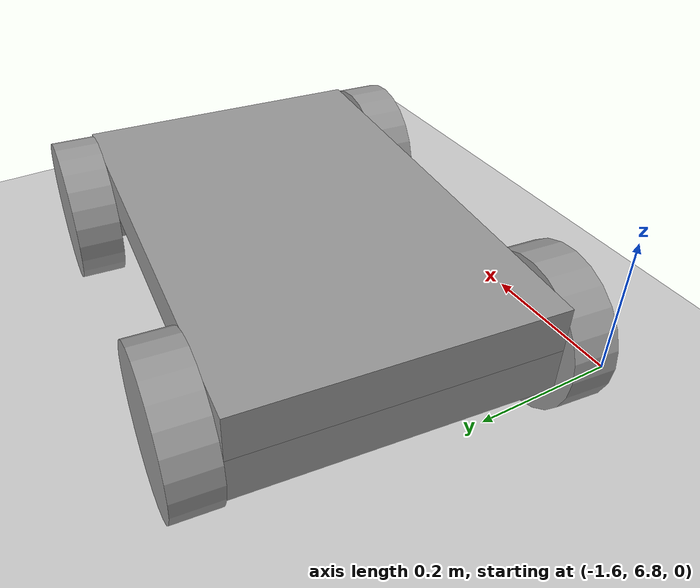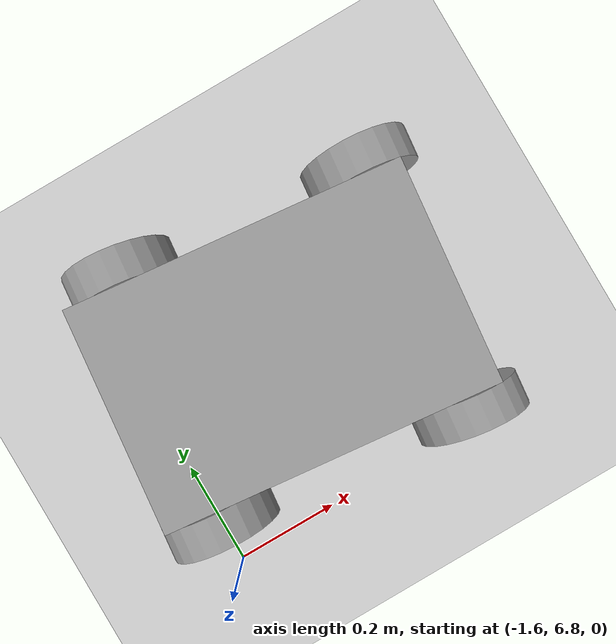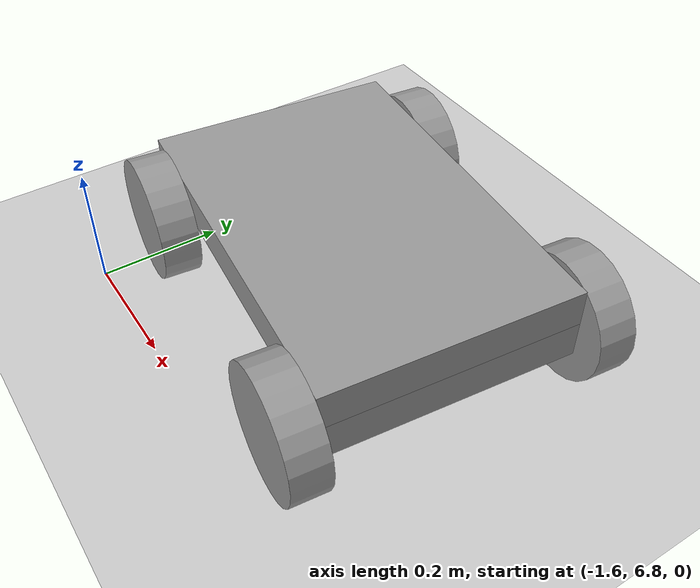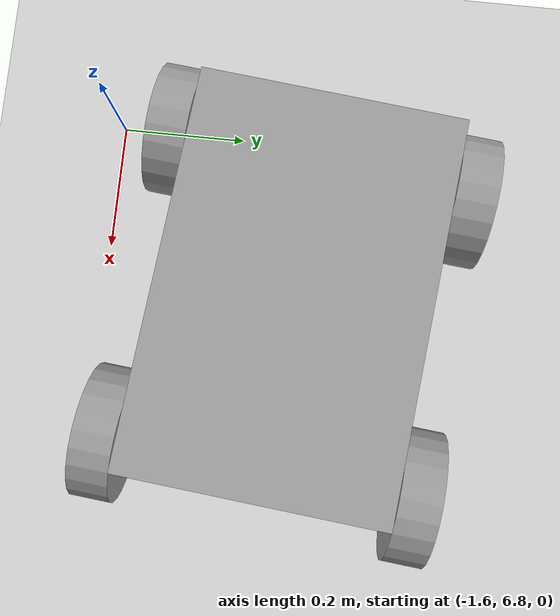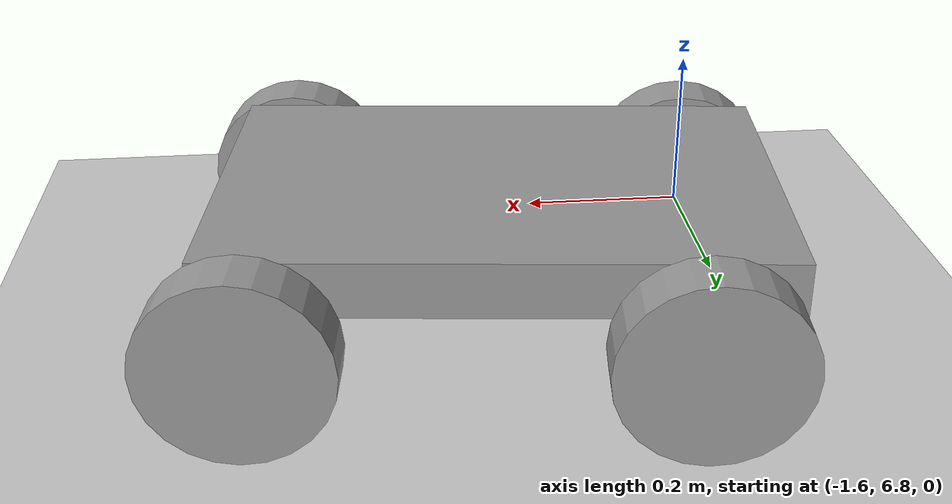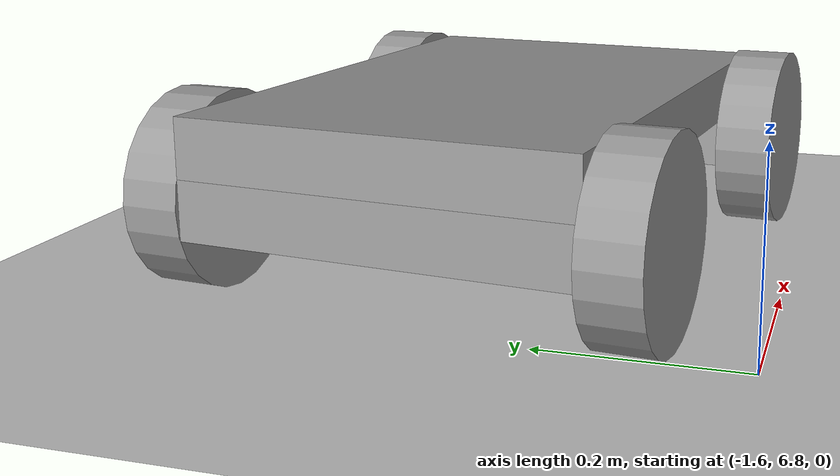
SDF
<sdf version="1.6">
 <world name="default">
  <model name="ground_plane">
   <static>1</static>
   <link name="link">
    <collision name="collision">
     <geometry><plane><normal>0 0 1</normal><size>100 100</size></plane></geometry>
     <surface>
      <contact><collide_bitmask>65535</collide_bitmask></contact>
      <friction><ode><mu>100</mu><mu2>50</mu2></ode></friction>
     </surface>
    </collision>
    <visual name="visual">
     <cast_shadows>0</cast_shadows>
     <geometry><plane><normal>0 0 1</normal><size>100 100</size></plane></geometry>
     <material>
      <script><uri>file://media/materials/scripts/gazebo.material</uri><name>Gazebo/Grey</name></script>
     </material>
    </visual>
   </link>
  </model>
  <model name="FourWheeledRobot">
   <link name="link_0">
    <pose>-0.26 0 -0.008571 0 -0 0</pose>
    <inertial>
     <mass>1</mass>
     <inertia>
      <ixx>0.166667</ixx>
      <ixy>0</ixy>
      <ixz>0</ixz>
      <iyy>0.166667</iyy>
      <iyz>0</iyz>
      <izz>0.166667</izz>
     </inertia>
    </inertial>
    <visual name="visual">
     <geometry><box><size>0.1 0.4 0.06</size></box></geometry>
     <material>
      <lighting>1</lighting>
      <script><uri>file://media/materials/scripts/gazebo.material</uri><name>Gazebo/Grey</name></script>
      <shader type="pixel"><normal_map>__default__</normal_map></shader>
      <ambient>0.3 0.3 0.3 1</ambient>
      <diffuse>0.7 0.7 0.7 1</diffuse>
      <specular>0.01 0.01 0.01 1</specular>
      <emissive>0 0 0 1</emissive>
     </material>
    </visual>
    <collision name="collision">
     <geometry><box><size>0.1 0.4 0.06</size></box></geometry>
     <surface>
      <friction>
       <ode><mu>1</mu><mu2>1</mu2><fdir1>0 0 0</fdir1><slip1>0</slip1><slip2>0</slip2></ode>
       <torsional>
        <coefficient>1</coefficient>
        <patch_radius>0</patch_radius>
        <surface_radius>0</surface_radius>
        <use_patch_radius>1</use_patch_radius>
        <ode><slip>0</slip></ode>
       </torsional>
      </friction>
      <bounce><restitution_coefficient>0</restitution_coefficient><threshold>1e+06</threshold></bounce>
      <contact>
       <collide_without_contact>0</collide_without_contact>
       <collide_without_contact_bitmask>1</collide_without_contact_bitmask>
       <collide_bitmask>1</collide_bitmask>
       <ode>
        <soft_cfm>0</soft_cfm>
        <soft_erp>0.2</soft_erp>
        <kp>1e+13</kp>
        <kd>1</kd>
        <max_vel>0.01</max_vel>
        <min_depth>0</min_depth>
       </ode>
       <bullet>
        <split_impulse>1</split_impulse>
        <split_impulse_penetration_threshold>-0.01</split_impulse_penetration_threshold>
        <soft_cfm>0</soft_cfm>
        <soft_erp>0.2</soft_erp>
        <kp>1e+13</kp>
        <kd>1</kd>
       </bullet>
      </contact>
     </surface>
    </collision>
   </link>
   <link name="link_0_clone">
    <pose>0.24 0 -0.008571 0 -0 0</pose>
    <inertial>
     <mass>1</mass>
     <inertia>
      <ixx>0.166667</ixx>
      <ixy>0</ixy>
      <ixz>0</ixz>
      <iyy>0.166667</iyy>
      <iyz>0</iyz>
      <izz>0.166667</izz>
     </inertia>
    </inertial>
    <visual name="visual">
     <geometry><box><size>0.1 0.4 0.06</size></box></geometry>
     <material>
      <lighting>1</lighting>
      <script><uri>file://media/materials/scripts/gazebo.material</uri><name>Gazebo/Grey</name></script>
      <shader type="pixel"><normal_map>__default__</normal_map></shader>
      <ambient>0.3 0.3 0.3 1</ambient>
      <diffuse>0.7 0.7 0.7 1</diffuse>
      <specular>0.01 0.01 0.01 1</specular>
      <emissive>0 0 0 1</emissive>
     </material>
    </visual>
    <collision name="collision">
     <geometry><box><size>0.1 0.4 0.06</size></box></geometry>
     <surface>
      <friction>
       <ode><mu>1</mu><mu2>1</mu2><fdir1>0 0 0</fdir1><slip1>0</slip1><slip2>0</slip2></ode>
       <torsional>
        <coefficient>1</coefficient>
        <patch_radius>0</patch_radius>
        <surface_radius>0</surface_radius>
        <use_patch_radius>1</use_patch_radius>
        <ode><slip>0</slip></ode>
       </torsional>
      </friction>
      <bounce><restitution_coefficient>0</restitution_coefficient><threshold>1e+06</threshold></bounce>
      <contact>
       <collide_without_contact>0</collide_without_contact>
       <collide_without_contact_bitmask>1</collide_without_contact_bitmask>
       <collide_bitmask>1</collide_bitmask>
       <ode>
        <soft_cfm>0</soft_cfm>
        <soft_erp>0.2</soft_erp>
        <kp>1e+13</kp>
        <kd>1</kd>
        <max_vel>0.01</max_vel>
        <min_depth>0</min_depth>
       </ode>
       <bullet>
        <split_impulse>1</split_impulse>
        <split_impulse_penetration_threshold>-0.01</split_impulse_penetration_threshold>
        <soft_cfm>0</soft_cfm>
        <soft_erp>0.2</soft_erp>
        <kp>1e+13</kp>
        <kd>1</kd>
       </bullet>
      </contact>
     </surface>
    </collision>
   </link>
   <link name="link_1">
    <pose>-0.01 0 0.051429 0 -0 0</pose>
    <inertial>
     <mass>1</mass>
     <inertia>
      <ixx>0.166667</ixx>
      <ixy>0</ixy>
      <ixz>0</ixz>
      <iyy>0.166667</iyy>
      <iyz>0</iyz>
      <izz>0.166667</izz>
     </inertia>
    </inertial>
    <visual name="visual">
     <geometry><box><size>0.6 0.4 0.06</size></box></geometry>
     <material>
      <lighting>1</lighting>
      <script><uri>file://media/materials/scripts/gazebo.material</uri><name>Gazebo/Grey</name></script>
      <shader type="pixel"><normal_map>__default__</normal_map></shader>
      <ambient>0.3 0.3 0.3 1</ambient>
      <diffuse>0.7 0.7 0.7 1</diffuse>
      <specular>0.01 0.01 0.01 1</specular>
      <emissive>0 0 0 1</emissive>
     </material>
    </visual>
    <collision name="collision">
     <geometry><box><size>0.6 0.4 0.06</size></box></geometry>
     <surface>
      <friction>
       <ode><mu>1</mu><mu2>1</mu2><fdir1>0 0 0</fdir1><slip1>0</slip1><slip2>0</slip2></ode>
       <torsional>
        <coefficient>1</coefficient>
        <patch_radius>0</patch_radius>
        <surface_radius>0</surface_radius>
        <use_patch_radius>1</use_patch_radius>
        <ode><slip>0</slip></ode>
       </torsional>
      </friction>
      <bounce><restitution_coefficient>0</restitution_coefficient><threshold>1e+06</threshold></bounce>
      <contact>
       <collide_without_contact>0</collide_without_contact>
       <collide_without_contact_bitmask>1</collide_without_contact_bitmask>
       <collide_bitmask>1</collide_bitmask>
       <ode>
        <soft_cfm>0</soft_cfm>
        <soft_erp>0.2</soft_erp>
        <kp>1e+13</kp>
        <kd>1</kd>
        <max_vel>0.01</max_vel>
        <min_depth>0</min_depth>
       </ode>
       <bullet>
        <split_impulse>1</split_impulse>
        <split_impulse_penetration_threshold>-0.01</split_impulse_penetration_threshold>
        <soft_cfm>0</soft_cfm>
        <soft_erp>0.2</soft_erp>
        <kp>1e+13</kp>
        <kd>1</kd>
       </bullet>
      </contact>
     </surface>
    </collision>
   </link>
   <link name="link_2">
    <pose>-0.235 -0.230013 -0.008571 1.5707 -0 0</pose>
    <inertial>
     <mass>1</mass>
     <inertia><ixx>0.145833</ixx><ixy>0</ixy><ixz>0</ixz><iyy>0.145833</iyy><iyz>0</iyz><izz>0.125</izz></inertia>
    </inertial>
    <visual name="visual">
     <geometry><cylinder><radius>0.1</radius><length>0.06</length></cylinder></geometry>
     <material>
      <lighting>1</lighting>
      <script><uri>file://media/materials/scripts/gazebo.material</uri><name>Gazebo/Grey</name></script>
      <shader type="pixel"><normal_map>__default__</normal_map></shader>
      <ambient>0.3 0.3 0.3 1</ambient>
      <diffuse>0.7 0.7 0.7 1</diffuse>
      <specular>0.01 0.01 0.01 1</specular>
      <emissive>0 0 0 1</emissive>
     </material>
    </visual>
    <collision name="collision">
     <geometry><cylinder><radius>0.1</radius><length>0.06</length></cylinder></geometry>
     <surface>
      <friction>
       <ode><mu>1</mu><mu2>1</mu2><fdir1>0 0 0</fdir1><slip1>0</slip1><slip2>0</slip2></ode>
       <torsional>
        <coefficient>1</coefficient>
        <patch_radius>0</patch_radius>
        <surface_radius>0</surface_radius>
        <use_patch_radius>1</use_patch_radius>
        <ode><slip>0</slip></ode>
       </torsional>
      </friction>
      <bounce><restitution_coefficient>0</restitution_coefficient><threshold>1e+06</threshold></bounce>
      <contact>
       <collide_without_contact>0</collide_without_contact>
       <collide_without_contact_bitmask>1</collide_without_contact_bitmask>
       <collide_bitmask>1</collide_bitmask>
       <ode>
        <soft_cfm>0</soft_cfm>
        <soft_erp>0.2</soft_erp>
        <kp>1e+13</kp>
        <kd>1</kd>
        <max_vel>0.01</max_vel>
        <min_depth>0</min_depth>
       </ode>
       <bullet>
        <split_impulse>1</split_impulse>
        <split_impulse_penetration_threshold>-0.01</split_impulse_penetration_threshold>
        <soft_cfm>0</soft_cfm>
        <soft_erp>0.2</soft_erp>
        <kp>1e+13</kp>
        <kd>1</kd>
       </bullet>
      </contact>
     </surface>
    </collision>
   </link>
   <link name="link_2_clone">
    <pose>-0.215 0.23001 -0.008571 1.5707 -0 0</pose>
    <inertial>
     <mass>1</mass>
     <inertia><ixx>0.145833</ixx><ixy>0</ixy><ixz>0</ixz><iyy>0.145833</iyy><iyz>0</iyz><izz>0.125</izz></inertia>
    </inertial>
    <visual name="visual">
     <geometry><cylinder><radius>0.1</radius><length>0.06</length></cylinder></geometry>
     <material>
      <lighting>1</lighting>
      <script><uri>file://media/materials/scripts/gazebo.material</uri><name>Gazebo/Grey</name></script>
      <shader type="pixel"><normal_map>__default__</normal_map></shader>
      <ambient>0.3 0.3 0.3 1</ambient>
      <diffuse>0.7 0.7 0.7 1</diffuse>
      <specular>0.01 0.01 0.01 1</specular>
      <emissive>0 0 0 1</emissive>
     </material>
    </visual>
    <collision name="collision">
     <geometry><cylinder><radius>0.1</radius><length>0.06</length></cylinder></geometry>
     <surface>
      <friction>
       <ode><mu>1</mu><mu2>1</mu2><fdir1>0 0 0</fdir1><slip1>0</slip1><slip2>0</slip2></ode>
       <torsional>
        <coefficient>1</coefficient>
        <patch_radius>0</patch_radius>
        <surface_radius>0</surface_radius>
        <use_patch_radius>1</use_patch_radius>
        <ode><slip>0</slip></ode>
       </torsional>
      </friction>
      <bounce><restitution_coefficient>0</restitution_coefficient><threshold>1e+06</threshold></bounce>
      <contact>
       <collide_without_contact>0</collide_without_contact>
       <collide_without_contact_bitmask>1</collide_without_contact_bitmask>
       <collide_bitmask>1</collide_bitmask>
       <ode>
        <soft_cfm>0</soft_cfm>
        <soft_erp>0.2</soft_erp>
        <kp>1e+13</kp>
        <kd>1</kd>
        <max_vel>0.01</max_vel>
        <min_depth>0</min_depth>
       </ode>
       <bullet>
        <split_impulse>1</split_impulse>
        <split_impulse_penetration_threshold>-0.01</split_impulse_penetration_threshold>
        <soft_cfm>0</soft_cfm>
        <soft_erp>0.2</soft_erp>
        <kp>1e+13</kp>
        <kd>1</kd>
       </bullet>
      </contact>
     </surface>
    </collision>
   </link>
   <link name="link_2_clone_0">
    <pose>0.24 -0.230009 -0.008571 1.5707 -0 0</pose>
    <inertial>
     <mass>1</mass>
     <inertia><ixx>0.145833</ixx><ixy>0</ixy><ixz>0</ixz><iyy>0.145833</iyy><iyz>0</iyz><izz>0.125</izz></inertia>
    </inertial>
    <visual name="visual">
     <geometry><cylinder><radius>0.1</radius><length>0.06</length></cylinder></geometry>
     <material>
      <lighting>1</lighting>
      <script><uri>file://media/materials/scripts/gazebo.material</uri><name>Gazebo/Grey</name></script>
      <shader type="pixel"><normal_map>__default__</normal_map></shader>
      <ambient>0.3 0.3 0.3 1</ambient>
      <diffuse>0.7 0.7 0.7 1</diffuse>
      <specular>0.01 0.01 0.01 1</specular>
      <emissive>0 0 0 1</emissive>
     </material>
    </visual>
    <collision name="collision">
     <geometry><cylinder><radius>0.1</radius><length>0.06</length></cylinder></geometry>
     <surface>
      <friction>
       <ode><mu>1</mu><mu2>1</mu2><fdir1>0 0 0</fdir1><slip1>0</slip1><slip2>0</slip2></ode>
       <torsional>
        <coefficient>1</coefficient>
        <patch_radius>0</patch_radius>
        <surface_radius>0</surface_radius>
        <use_patch_radius>1</use_patch_radius>
        <ode><slip>0</slip></ode>
       </torsional>
      </friction>
      <bounce><restitution_coefficient>0</restitution_coefficient><threshold>1e+06</threshold></bounce>
      <contact>
       <collide_without_contact>0</collide_without_contact>
       <collide_without_contact_bitmask>1</collide_without_contact_bitmask>
       <collide_bitmask>1</collide_bitmask>
       <ode>
        <soft_cfm>0</soft_cfm>
        <soft_erp>0.2</soft_erp>
        <kp>1e+13</kp>
        <kd>1</kd>
        <max_vel>0.01</max_vel>
        <min_depth>0</min_depth>
       </ode>
       <bullet>
        <split_impulse>1</split_impulse>
        <split_impulse_penetration_threshold>-0.01</split_impulse_penetration_threshold>
        <soft_cfm>0</soft_cfm>
        <soft_erp>0.2</soft_erp>
        <kp>1e+13</kp>
        <kd>1</kd>
       </bullet>
      </contact>
     </surface>
    </collision>
   </link>
   <link name="link_2_clone_1">
    <pose>0.24 0.23001 -0.008571 1.5707 -0 0</pose>
    <inertial>
     <mass>1</mass>
     <inertia><ixx>0.145833</ixx><ixy>0</ixy><ixz>0</ixz><iyy>0.145833</iyy><iyz>0</iyz><izz>0.125</izz></inertia>
    </inertial>
    <visual name="visual">
     <geometry><cylinder><radius>0.1</radius><length>0.06</length></cylinder></geometry>
     <material>
      <lighting>1</lighting>
      <script><uri>file://media/materials/scripts/gazebo.material</uri><name>Gazebo/Grey</name></script>
      <shader type="pixel"><normal_map>__default__</normal_map></shader>
      <ambient>0.3 0.3 0.3 1</ambient>
      <diffuse>0.7 0.7 0.7 1</diffuse>
      <specular>0.01 0.01 0.01 1</specular>
      <emissive>0 0 0 1</emissive>
     </material>
    </visual>
    <collision name="collision">
     <geometry><cylinder><radius>0.1</radius><length>0.06</length></cylinder></geometry>
     <surface>
      <friction>
       <ode><mu>1</mu><mu2>1</mu2><fdir1>0 0 0</fdir1><slip1>0</slip1><slip2>0</slip2></ode>
       <torsional>
        <coefficient>1</coefficient>
        <patch_radius>0</patch_radius>
        <surface_radius>0</surface_radius>
        <use_patch_radius>1</use_patch_radius>
        <ode><slip>0</slip></ode>
       </torsional>
      </friction>
      <bounce><restitution_coefficient>0</restitution_coefficient><threshold>1e+06</threshold></bounce>
      <contact>
       <collide_without_contact>0</collide_without_contact>
       <collide_without_contact_bitmask>1</collide_without_contact_bitmask>
       <collide_bitmask>1</collide_bitmask>
       <ode>
        <soft_cfm>0</soft_cfm>
        <soft_erp>0.2</soft_erp>
        <kp>1e+13</kp>
        <kd>1</kd>
        <max_vel>0.01</max_vel>
        <min_depth>0</min_depth>
       </ode>
       <bullet>
        <split_impulse>1</split_impulse>
        <split_impulse_penetration_threshold>-0.01</split_impulse_penetration_threshold>
        <soft_cfm>0</soft_cfm>
        <soft_erp>0.2</soft_erp>
        <kp>1e+13</kp>
        <kd>1</kd>
       </bullet>
      </contact>
     </surface>
    </collision>
   </link>
   <joint name="link_0_JOINT_4" type="revolute">
    <parent>link_0</parent>
    <child>link_2</child>
    <axis>
     <xyz>0 0 1</xyz>
     <use_parent_model_frame>0</use_parent_model_frame>
     <limit>
      <lower>-1.79769e+308</lower>
      <upper>1.79769e+308</upper>
      <effort>-1</effort>
      <velocity>-1</velocity>
     </limit>
     <dynamics>
      <spring_reference>0</spring_reference>
      <spring_stiffness>0</spring_stiffness>
      <damping>0</damping>
     </dynamics>
    </axis>
    <physics>
     <ode><limit><cfm>0</cfm><erp>0.2</erp></limit><suspension><cfm>0</cfm><erp>0.2</erp></suspension></ode>
    </physics>
   </joint>
   <joint name="link_0_JOINT_5" type="revolute">
    <parent>link_0</parent>
    <child>link_2_clone</child>
    <axis>
     <xyz>0 0 1</xyz>
     <use_parent_model_frame>0</use_parent_model_frame>
     <limit>
      <lower>-1.79769e+308</lower>
      <upper>1.79769e+308</upper>
      <effort>-1</effort>
      <velocity>-1</velocity>
     </limit>
     <dynamics>
      <spring_reference>0</spring_reference>
      <spring_stiffness>0</spring_stiffness>
      <damping>0</damping>
     </dynamics>
    </axis>
    <physics>
     <ode><limit><cfm>0</cfm><erp>0.2</erp></limit><suspension><cfm>0</cfm><erp>0.2</erp></suspension></ode>
    </physics>
   </joint>
   <joint name="link_0_clone_JOINT_6" type="revolute">
    <parent>link_0_clone</parent>
    <child>link_2_clone_0</child>
    <axis>
     <xyz>0 0 1</xyz>
     <use_parent_model_frame>0</use_parent_model_frame>
     <limit>
      <lower>-1.79769e+308</lower>
      <upper>1.79769e+308</upper>
      <effort>-1</effort>
      <velocity>-1</velocity>
     </limit>
     <dynamics>
      <spring_reference>0</spring_reference>
      <spring_stiffness>0</spring_stiffness>
      <damping>0</damping>
     </dynamics>
    </axis>
    <physics>
     <ode><limit><cfm>0</cfm><erp>0.2</erp></limit><suspension><cfm>0</cfm><erp>0.2</erp></suspension></ode>
    </physics>
   </joint>
   <joint name="link_0_clone_JOINT_7" type="revolute">
    <parent>link_0_clone</parent>
    <child>link_2_clone_1</child>
    <axis>
     <xyz>0 0 1</xyz>
     <use_parent_model_frame>0</use_parent_model_frame>
     <limit>
      <lower>-1.79769e+308</lower>
      <upper>1.79769e+308</upper>
      <effort>-1</effort>
      <velocity>-1</velocity>
     </limit>
     <dynamics>
      <spring_reference>0</spring_reference>
      <spring_stiffness>0</spring_stiffness>
      <damping>0</damping>
     </dynamics>
    </axis>
    <physics>
     <ode><limit><cfm>0</cfm><erp>0.2</erp></limit><suspension><cfm>0</cfm><erp>0.2</erp></suspension></ode>
    </physics>
   </joint>
   <joint name="link_1_JOINT_2" type="screw">
    <parent>link_1</parent>
    <child>link_0</child>
    <axis>
     <xyz>0 0 1</xyz>
     <use_parent_model_frame>0</use_parent_model_frame>
     <limit>
      <lower>-1.79769e+308</lower>
      <upper>1.79769e+308</upper>
      <effort>-1</effort>
      <velocity>-1</velocity>
     </limit>
     <dynamics>
      <spring_reference>0</spring_reference>
      <spring_stiffness>0</spring_stiffness>
      <damping>0</damping>
     </dynamics>
    </axis>
    <physics>
     <ode><limit><cfm>0</cfm><erp>0.2</erp></limit><suspension><cfm>0</cfm><erp>0.2</erp></suspension></ode>
    </physics>
    <thread_pitch>1</thread_pitch>
   </joint>
   <joint name="link_1_JOINT_3" type="screw">
    <parent>link_1</parent>
    <child>link_0_clone</child>
    <axis>
     <xyz>0 0 1</xyz>
     <use_parent_model_frame>0</use_parent_model_frame>
     <limit>
      <lower>-1.79769e+308</lower>
      <upper>1.79769e+308</upper>
      <effort>-1</effort>
      <velocity>-1</velocity>
     </limit>
     <dynamics>
      <spring_reference>0</spring_reference>
      <spring_stiffness>0</spring_stiffness>
      <damping>0</damping>
     </dynamics>
    </axis>
    <physics>
     <ode><limit><cfm>0</cfm><erp>0.2</erp></limit><suspension><cfm>0</cfm><erp>0.2</erp></suspension></ode>
    </physics>
    <thread_pitch>1</thread_pitch>
   </joint>
   <static>0</static>
   <pose>-1.31446 7.10924 0.108566 1e-06 2e-06 -0.105207</pose>
  </model>
 </world>
</sdf>
